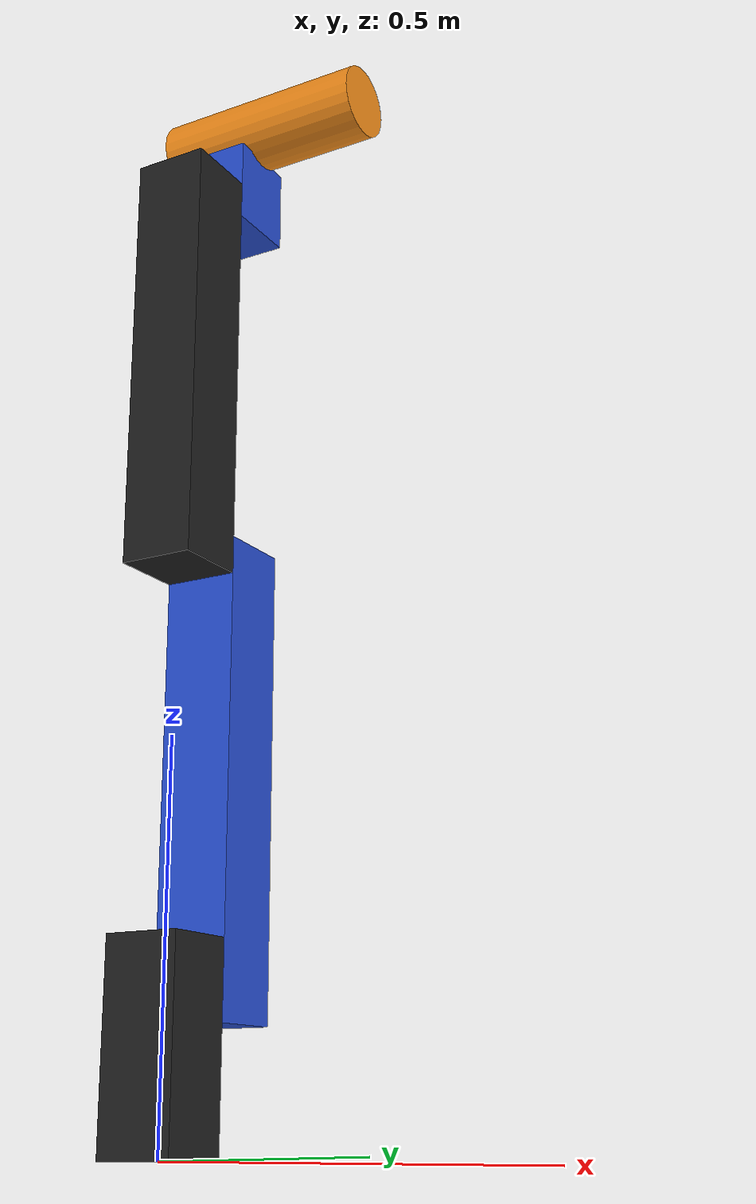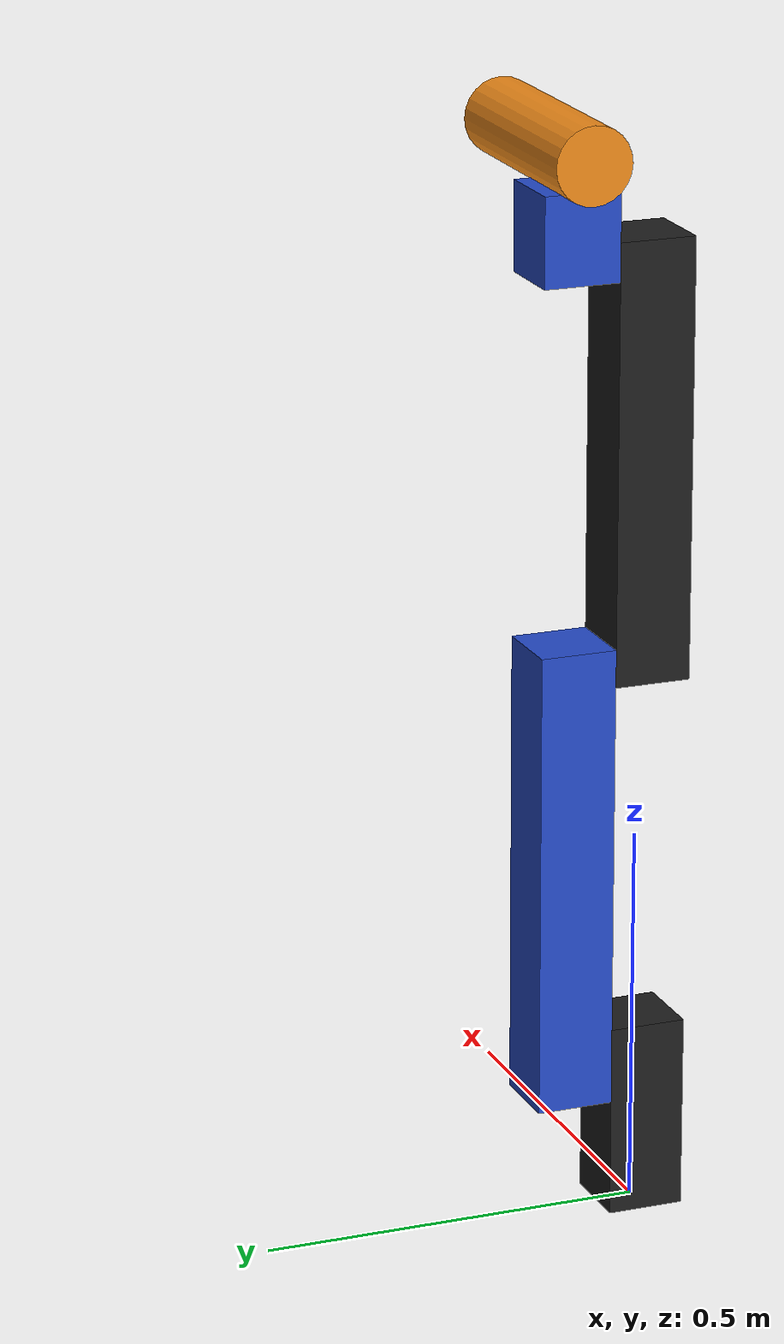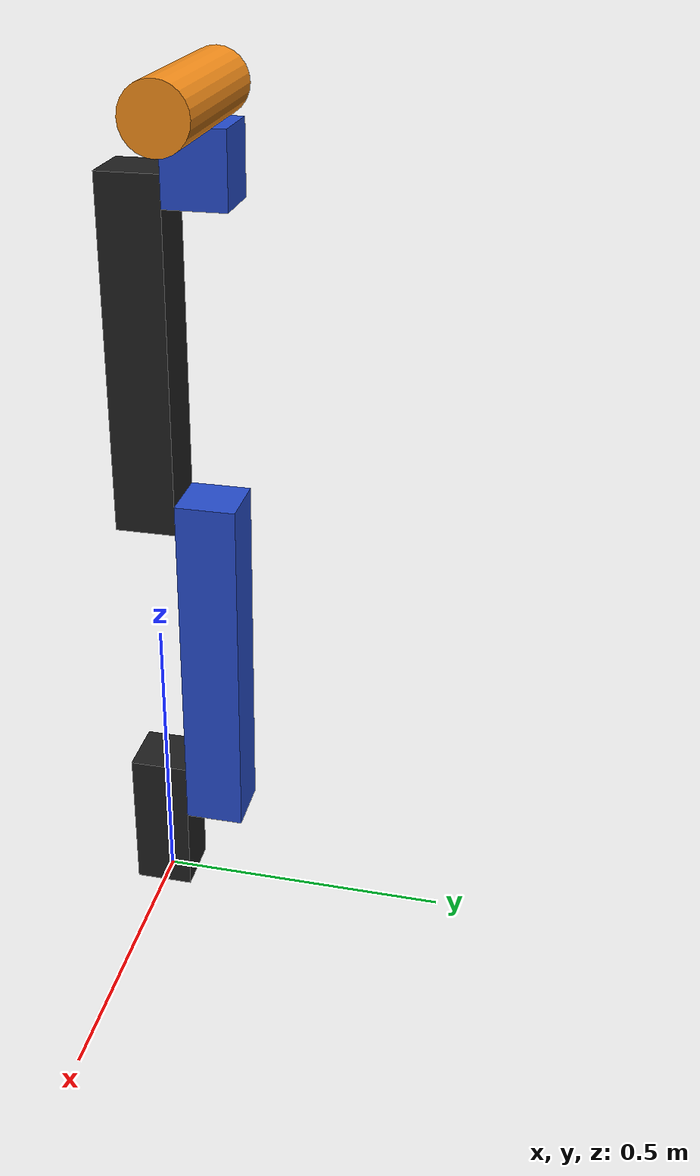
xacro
<?xml version="1.0"?>
<!-- Revolute-Revolute Manipulator -->
<robot name="ur10" xmlns:xacro="http://www.ros.org/wiki/xacro">

  <!-- Constants for robot dimensions -->
  <xacro:property name="PI" value="3.1415926535897931"/>
  <xacro:property name="mass" value="1" /> <!-- arbitrary value for mass -->
  <xacro:property name="width" value="0.1" /> <!-- Square dimensions (widthxwidth) of beams -->
  <xacro:property name="height1" value="1" /> <!-- Link 1 -->
  <xacro:property name="height2" value="0.6127" /> <!-- Link 2 -->
  <xacro:property name="height3" value="0.5716" /> <!-- Link 3 -->
  <xacro:property name="height4" value="0.1157" /> <!-- Link 4 -->
  <xacro:property name="height5" value="0.1157" /> <!-- Link 5 -->
  <xacro:property name="axel_offset" value="0.05" /> <!-- Space btw top of beam and the each joint -->

  <!-- Import all Gazebo-customization elements, including Gazebo colors -->
  <xacro:include filename="$(find ur10_control)/urdf/ur10.gazebo" />
  <!-- Import Rviz colors -->
  <xacro:include filename="$(find ur10_control)/urdf/materials.xacro" />

  <!-- Used for fixing robot to Gazebo 'base_link' -->
  <link name="world"/>

  <joint name="fixed" type="fixed">
    <parent link="world"/>
    <child link="link1"/>
  </joint>

  <link name="link1">
    <collision>
      <origin xyz="0 0 0.256" rpy="0 0 0"/>
      <geometry>
	<box size="${width} ${width} 0.256"/>
      </geometry>
    </collision>

    <visual>
      <origin xyz="0 0 0.128" rpy="0 0 0"/>
      <geometry>
	<box size="${width} ${width} 0.256"/>
      </geometry>
      <material name="black"/>
    </visual>

    <inertial>
      <origin xyz="0 0 0.128" rpy="0 0 0"/>
      <mass value="${mass}"/>
      <inertia
	  ixx="${mass / 12.0 * (width*width + 0.256*0.256)}" ixy="0.0" ixz="0.0"
	  iyy="${mass / 12.0 * (0.256*0.256 + width*width)}" iyz="0.0"
	  izz="${mass / 12.0 * (width*width + width*width)}"/>
    </inertial>
  </link>

  <joint name="joint1" type="continuous">
    <parent link="link1"/>
    <child link="link2"/>
    <origin xyz="0 ${width} ${0.256 - axel_offset}" rpy="0 0 0"/>
    <axis xyz="0 1 0"/>
    <dynamics damping="0.7"/>
  </joint>

  <link name="link2">
    <collision>
      <origin xyz="0 0 ${height2/2 - axel_offset}" rpy="0 0 0"/>
      <geometry>
  <box size="${width} ${width} ${height2}"/>
      </geometry>
    </collision>
    <visual>
      <origin xyz="0 0 ${height2/2 - axel_offset}" rpy="0 0 0"/>
      <geometry>
	<box size="${width} ${width} ${height2}"/>
      </geometry>
      <material name="blue"/>
    </visual>
    <inertial>
      <origin xyz="0 0 ${height2/2 - axel_offset}" rpy="0 0 0"/>
      <mass value="${mass}"/>
      <inertia
	  ixx="${mass / 12.0 * (width*width + height2*height2)}" ixy="0.0" ixz="0.0"
	  iyy="${mass / 12.0 * (height2*height2 + width*width)}" iyz="0.0"
	  izz="${mass / 12.0 * (width*width + width*width)}"/>
    </inertial>
  </link>

  <joint name="joint2" type="continuous">
    <parent link="link2"/>
    <child link="link3"/>
    <origin xyz="0 ${-width} ${height2 - axel_offset}" rpy="0 0 0"/>
    <axis xyz="0 1 0"/>
    <dynamics damping="0.7"/>
  </joint>

  <link name="link3">
    <collision>
      <origin xyz="0 0 ${height3/2 - axel_offset}" rpy="0 0 0"/>
      <geometry>
  <box size="${width} ${width} ${height3}"/>
      </geometry>
    </collision>
    <visual>
      <origin xyz="0 0 ${height3/2 - axel_offset}" rpy="0 0 0"/>
      <geometry>
	<box size="${width} ${width} ${height3}"/>
      </geometry>
      <material name="black"/>
    </visual>
    <inertial>
      <origin xyz="0 0 ${height3/2 - axel_offset}" rpy="0 0 0"/>
      <mass value="${mass}"/>
      <inertia
	  ixx="${mass / 12.0 * (width*width + height3*height3)}" ixy="0.0" ixz="0.0"
	  iyy="${mass / 12.0 * (height3*height3 + width*width)}" iyz="0.0"
	  izz="${mass / 12.0 * (width*width + width*width)}"/>
    </inertial>
  </link>

  <joint name="joint3" type="continuous">
    <parent link="link3"/>
    <child link="link4"/>
    <origin xyz="0 ${width} ${height3 - axel_offset}" rpy="0 0 0"/>
    <axis xyz="0 1 0"/>
    <dynamics damping="0.7"/>
  </joint>

  <link name="link4">
    <collision>
      <origin xyz="0 0 ${height4/2 - axel_offset}" rpy="0 0 0"/>
      <geometry>
  <box size="${width} ${width} ${height4}"/>
      </geometry>
    </collision>
    <visual>
      <origin xyz="0 0 ${height4/2 - axel_offset}" rpy="0 0 0"/>
      <geometry>
	<box size="${width} ${width} ${height4}"/>
      </geometry>
      <material name="blue"/>
    </visual>
    <inertial>
      <origin xyz="0 0 ${height4/2 - axel_offset}" rpy="0 0 0"/>
      <mass value="${mass}"/>
      <inertia
	  ixx="${mass / 12.0 * (width*width + height4*height4)}" ixy="0.0" ixz="0.0"
	  iyy="${mass / 12.0 * (height4*height4 + width*width)}" iyz="0.0"
	  izz="${mass / 12.0 * (width*width + width*width)}"/>
    </inertial>
  </link>

  <joint name="joint4" type="continuous">
    <parent link="link4"/>
    <child link="link5"/>
    <origin xyz="0 0 ${height4 - axel_offset}" rpy="0 0 0"/>
    <axis xyz="0 0 1"/>
    <dynamics damping="0.7"/>
  </joint>

  <link name="link5">
      <visual>
      <geometry>
        <cylinder length="0.3" radius="0.05"/>
      </geometry>
      <origin rpy="0 1.57 0" xyz="${height5-axel_offset} 0 ${height5 - axel_offset*1.5}"/>
      <material name="orange"/>
    </visual>
    <collision>
      <geometry>
        <cylinder length="0.3" radius="0.05"/>
      </geometry>
    </collision>
  </link>

  <gazebo>
    <plugin name="gazebo_ros_control" filename="libgazebo_ros_control.so">
      <robotNamespace>/ur10</robotNamespace>
      <robotSimType>gazebo_ros_control/DefaultRobotHWSim</robotSimType>
    </plugin>
  </gazebo>

  <transmission name="tran1">
    <type>transmission_interface/SimpleTransmission</type>
    <joint name="joint1">
      <hardwareInterface>hardware_interface/EffortJointInterface</hardwareInterface>
    </joint>
    <actuator name="motor1">
      <hardwareInterface>hardware_interface/EffortJointInterface</hardwareInterface>
      <mechanicalReduction>1</mechanicalReduction>
    </actuator>
  </transmission>

  <transmission name="tran2">
    <type>transmission_interface/SimpleTransmission</type>
    <joint name="joint2">
      <hardwareInterface>hardware_interface/EffortJointInterface</hardwareInterface>
    </joint>
    <actuator name="motor2">
      <hardwareInterface>hardware_interface/EffortJointInterface</hardwareInterface>
      <mechanicalReduction>1</mechanicalReduction>
    </actuator>
  </transmission>

  <transmission name="tran3">
    <type>transmission_interface/SimpleTransmission</type>
    <joint name="joint3">
      <hardwareInterface>hardware_interface/EffortJointInterface</hardwareInterface>
    </joint>
    <actuator name="motor3">
      <hardwareInterface>hardware_interface/EffortJointInterface</hardwareInterface>
      <mechanicalReduction>1</mechanicalReduction>
    </actuator>
  </transmission>

  <transmission name="tran4">
    <type>transmission_interface/SimpleTransmission</type>
    <joint name="joint4">
      <hardwareInterface>hardware_interface/EffortJointInterface</hardwareInterface>
    </joint>
    <actuator name="motor4">
      <hardwareInterface>hardware_interface/EffortJointInterface</hardwareInterface>
      <mechanicalReduction>1</mechanicalReduction>
    </actuator>
  </transmission>

</robot>
